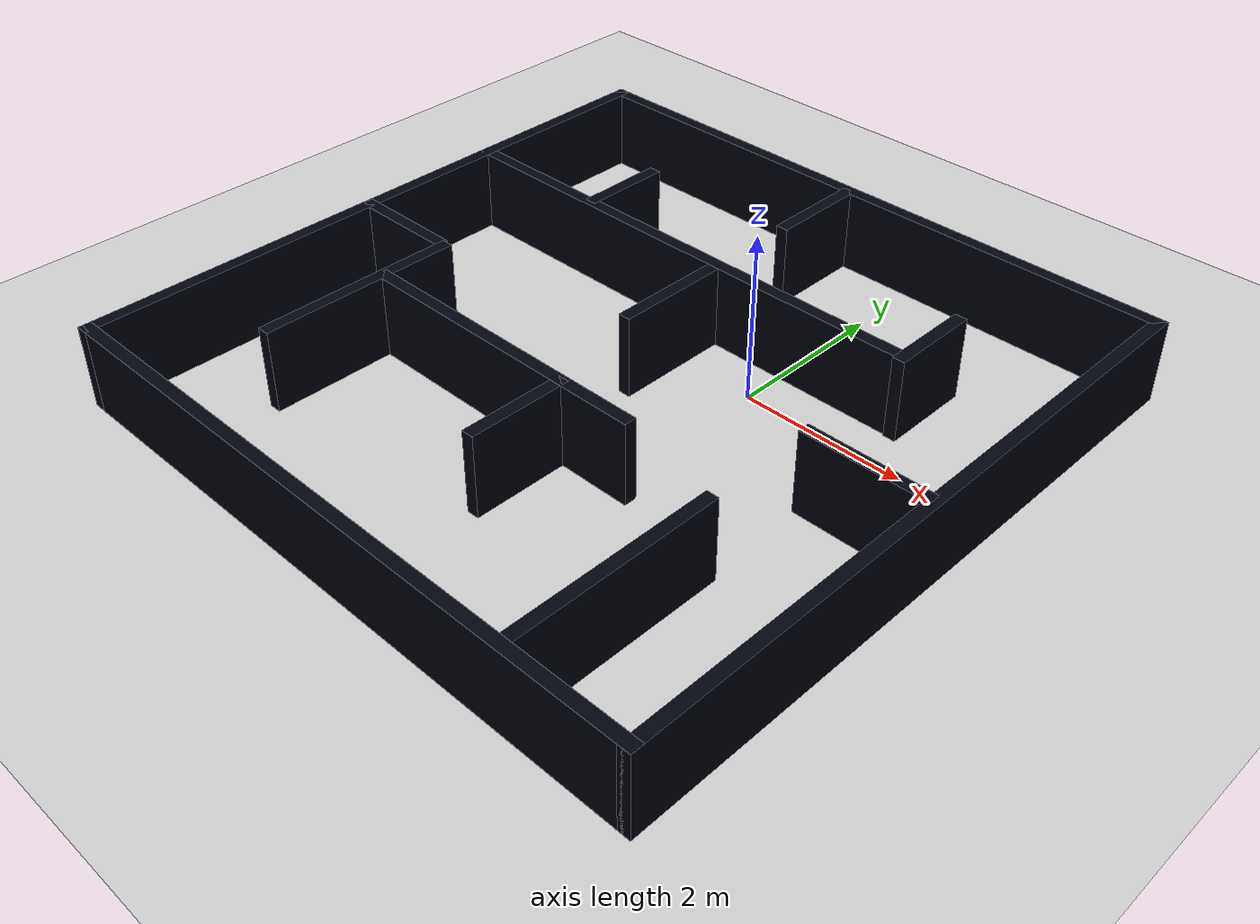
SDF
<?xml version='1.0'?>
<sdf version='1.6'>
  <world name='small'>
    <physics name='10ms' type='ignored'>
        <max_step_size>0.01</max_step_size>
        <real_time_factor>1</real_time_factor>
        <real_time_update_rate>100</real_time_update_rate>
    </physics>
    <plugin
      filename="ignition-gazebo-physics-system"
      name="gz::sim::systems::Physics">
    </plugin>
    <plugin
      filename="ignition-gazebo-user-commands-system"
      name="gz::sim::systems::UserCommands">
    </plugin>
    <plugin
      filename="ignition-gazebo-scene-broadcaster-system"
      name="gz::sim::systems::SceneBroadcaster">
    </plugin>
    <plugin
      filename="ignition-gazebo-contact-system"
      name="gz::sim::systems::Contact">
    </plugin>
    <light name='sun' type='directional'>
        <cast_shadows>1</cast_shadows>
        <pose>0 0 10 0 -0 0</pose>
        <diffuse>0.8 0.8 0.8 1</diffuse>
        <specular>0.2 0.2 0.2 1</specular>
        <attenuation>
            <range>1000</range>
            <constant>0.90000000000000002</constant>
            <linear>0.01</linear>
            <quadratic>0.001</quadratic>
        </attenuation>
        <direction>-0.5 0.1 -0.9</direction>
        <spot>
            <inner_angle>0</inner_angle>
            <outer_angle>0</outer_angle>
            <falloff>0</falloff>
        </spot>
    </light>
    <gravity>0 0 -9.8</gravity>
    <magnetic_field>6e-06 2.3e-05 -4.2e-05</magnetic_field>
    <atmosphere type='adiabatic' />
    <scene>
        <ambient>0.4 0.4 0.4 1</ambient>
        <background>0.7 0.7 0.7 1</background>
        <shadows>1</shadows>
    </scene>
    <model name='ground_plane'>
        <static>1</static>
        <link name='link'>
            <collision name='collision'>
                <geometry>
                    <plane>
                        <normal>0 0 1</normal>
                        <size>100 100</size>
                    </plane>
                </geometry>
                <surface>
                    <friction>
                        <ode />
                    </friction>
                    <bounce />
                    <contact />
                </surface>
            </collision>
            <visual name='visual'>
                <geometry>
                    <plane>
                        <normal>0 0 1</normal>
                        <size>100 100</size>
                    </plane>
                </geometry>
                <material>
                    <ambient>0.8 0.8 0.8 1</ambient>
                    <diffuse>0.8 0.8 0.8 1</diffuse>
                    <specular>0.8 0.8 0.8 1</specular>
                </material>
                <plugin name='__default__' filename='__default__' />
            </visual>
        </link>
        <plugin name='__default__' filename='__default__' />
        <pose>0 0 0 0 -0 0</pose>
    </model>

    <model name='Wall_15'>
      <link name='wall'>
        <pose>-4.19324 -1.26317 0.5 0 -0 0</pose>
        <static>true</static>
        <collision name='collision'>
          <geometry>
            <box>
              <size>1.36045 0.15 1</size>
            </box>
          </geometry>
        </collision>
        <visual name='visual'>
          <geometry>
            <box>
              <size>1.36045 0.15 1</size>
            </box>
          </geometry>
          <material>
            <ambient>0.1 0.1 0.1 1</ambient>
            <diffuse>0 0.01 0.05 1</diffuse>
            <specular>0 0.01 0.05 1</specular>
          </material>
        </visual>
      </link>
    </model>
    <model name='Wall_17'>
      <link name='wall17'>
        <pose>1.56897 -3.62224 0.5 0 0 -1.5708</pose>
        <static>true</static>
        <collision name='collision'>
          <geometry>
            <box>
              <size>2.5 0.15 1</size>
            </box>
          </geometry>
        </collision>
        <visual name='visual'>
          <geometry>
            <box>
              <size>2.5 0.15 1</size>
            </box>
          </geometry>
          <material>
            <ambient>0.1 0.1 0.1 1</ambient>
            <diffuse>0 0.01 0.05 1</diffuse>
            <specular>0 0.01 0.05 1</specular>
          </material>
        </visual>
      </link>
    </model>
    <model name='Wall_19'>
      <link name='wall'>
        <pose>2.27726 -1.04863 0.5 0 -0 3.14159</pose>
        <static>true</static>
        <collision name='collision'>
          <geometry>
            <box>
              <size>1.5 0.15 1</size>
            </box>
          </geometry>
        </collision>
        <visual name='visual'>
          <geometry>
            <box>
              <size>1.5 0.15 1</size>
            </box>
          </geometry>
          <material>
            <ambient>0.1 0.1 0.1 1</ambient>
            <diffuse>0 0.01 0.05 1</diffuse>
            <specular>0 0.01 0.05 1</specular>
          </material>
        </visual>
      </link>
    </model>
    <model name='Wall_22'>
      <link name='wall'>
        <pose>-4.81214 -1 0.5 0 0 -1.5708</pose>
        <static>true</static>
        <collision name='collision'>
          <geometry>
            <box>
              <size>8 0.15 1</size>
            </box>
          </geometry>
        </collision>
        <visual name='visual'>
          <geometry>
            <box>
              <size>8 0.15 1</size>
            </box>
          </geometry>
          <material>
            <ambient>0.1 0.1 0.1 1</ambient>
            <diffuse>0 0.01 0.05 1</diffuse>
            <specular>0 0.01 0.05 1</specular>
          </material>
        </visual>
      </link>
    </model>
    <model name='Wall_23'>
      <link name='wall'>
        <pose>-0.8887143 -4.925 0.5 0 -0 0</pose>
        <static>true</static>
        <collision name='collision'>
          <geometry>
            <box>
              <size>8 0.15 1</size>
            </box>
          </geometry>
        </collision>
        <visual name='visual'>
          <geometry>
            <box>
              <size>8 0.15 1</size>
            </box>
          </geometry>
          <material>
            <ambient>0.1 0.1 0.1 1</ambient>
            <diffuse>0 0.01 0.05 1</diffuse>
            <specular>0 0.01 0.05 1</specular>
          </material>
        </visual>
      </link>
    </model>
    <model name='Wall_24'>
      <link name='wall'>
        <pose>3.03786 -1 0.5 0 -0 1.5708</pose>
        <static>true</static>
        <collision name='collision'>
          <geometry>
            <box>
              <size>8 0.15 1</size>
            </box>
          </geometry>
        </collision>
        <visual name='visual'>
          <geometry>
            <box>
              <size>8 0.15 1</size>
            </box>
          </geometry>
          <material>
            <ambient>0.1 0.1 0.1 1</ambient>
            <diffuse>0 0.01 0.05 1</diffuse>
            <specular>0 0.01 0.05 1</specular>
          </material>
        </visual>
      </link>
    </model>
    <model name='Wall_25'>
      <link name='wall'>
        <pose>-0.8887143 2.925 0.5 0 -0 3.14159</pose>
        <static>true</static>
        <collision name='collision'>
          <geometry>
            <box>
              <size>8 0.15 1</size>
            </box>
          </geometry>
        </collision>
        <visual name='visual'>
          <geometry>
            <box>
              <size>8 0.15 1</size>
            </box>
          </geometry>
          <material>
            <ambient>0.1 0.1 0.1 1</ambient>
            <diffuse>0 0.01 0.05 1</diffuse>
            <specular>0 0.01 0.05 1</specular>
          </material>
        </visual>
      </link>
    </model>
    <model name='Wall_32'>
      <link name='wall'>
        <pose>-3.47225 -2.45584 0.5 0 0 -1.5708</pose>
        <static>true</static>
        <collision name='collision'>
          <geometry>
            <box>
              <size>2.47918 0.15 1</size>
            </box>
          </geometry>
        </collision>
        <visual name='visual'>
          <geometry>
            <box>
              <size>2.47918 0.15 1</size>
            </box>
          </geometry>
          <material>
            <ambient>0.1 0.1 0.1 1</ambient>
            <diffuse>0 0.01 0.05 1</diffuse>
            <specular>0 0.01 0.05 1</specular>
          </material>
        </visual>
      </link>
    </model>
    <model name='Wall_34'>
      <link name='wall'>
        <pose>-1 -0.144436 0.5 0 0 -1.5708</pose>
        <static>true</static>
        <collision name='collision'>
          <geometry>
            <box>
              <size>1.5 0.15 1</size>
            </box>
          </geometry>
        </collision>
        <visual name='visual'>
          <geometry>
            <box>
              <size>1.5 0.15 1</size>
            </box>
          </geometry>
          <material>
            <ambient>0.1 0.1 0.1 1</ambient>
            <diffuse>0 0.01 0.05 1</diffuse>
            <specular>0 0.01 0.05 1</specular>
          </material>
        </visual>
      </link>
    </model>
    <model name='Wall_40'>
      <link name='wall'>
        <pose>-3 1.123895 0.5 0 0 -1.5708</pose>
        <static>true</static>
        <collision name='collision'>
          <geometry>
            <box>
              <size>1.1 0.15 1</size>
            </box>
          </geometry>
        </collision>
        <visual name='visual'>
          <geometry>
            <box>
              <size>1.1 0.15 1</size>
            </box>
          </geometry>
          <material>
            <ambient>0.1 0.1 0.1 1</ambient>
            <diffuse>0 0.01 0.05 1</diffuse>
            <specular>0 0.01 0.05 1</specular>
          </material>
        </visual>
      </link>
    </model>
    <model name='Wall_41'>
      <link name='wall'>
        <pose>1.51058 1.02795 0.5 0 0 -1.5708</pose>
        <static>true</static>
        <collision name='collision'>
          <geometry>
            <box>
              <size>1.1 0.15 1</size>
            </box>
          </geometry>
        </collision>
        <visual name='visual'>
          <geometry>
            <box>
              <size>1.1 0.15 1</size>
            </box>
          </geometry>
          <material>
            <ambient>0.1 0.1 0.1 1</ambient>
            <diffuse>0 0.01 0.05 1</diffuse>
            <specular>0 0.01 0.05 1</specular>
          </material>
        </visual>
      </link>
    </model>
    <model name='Wall_42'>
      <link name='wall'>
        <pose>-1 2.3 0.5 0 0 -1.5708</pose>
        <static>true</static>
        <collision name='collision'>
          <geometry>
            <box>
              <size>1.25 0.15 1</size>
            </box>
          </geometry>
        </collision>
        <visual name='visual'>
          <geometry>
            <box>
              <size>1.25 0.15 1</size>
            </box>
          </geometry>
          <material>
            <ambient>0.1 0.1 0.1 1</ambient>
            <diffuse>0 0.01 0.05 1</diffuse>
            <specular>0 0.01 0.05 1</specular>
          </material>
        </visual>
      </link>
    </model>
    <model name='Wall_5'>
      <link name='wall'>
        <pose>-1.7 0.575 0.5 0 -0 0</pose>
        <static>true</static>
        <collision name='collision'>
          <geometry>
            <box>
              <size>6.3 0.15 1</size>
            </box>
          </geometry>
        </collision>
        <visual name='visual'>
          <geometry>
            <box>
              <size>6.3 0.15 1</size>
            </box>
          </geometry>
          <material>
            <ambient>0.1 0.1 0.1 1</ambient>
            <diffuse>0 0.01 0.05 1</diffuse>
            <specular>0 0.01 0.05 1</specular>
          </material>
        </visual>
      </link>
    </model>
    <model name='Wall_50'>
      <link name='wall'>
        <pose>-0.66 -2.71961 0.5 0 0 -1.5708</pose>
        <static>true</static>
        <collision name='collision'>
          <geometry>
            <box>
              <size>1.25 0.15 1</size>
            </box>
          </geometry>
        </collision>
        <visual name='visual'>
          <geometry>
            <box>
              <size>1.25 0.15 1</size>
            </box>
          </geometry>
          <material>
            <ambient>0.1 0.1 0.1 1</ambient>
            <diffuse>0 0.01 0.05 1</diffuse>
            <specular>0 0.01 0.05 1</specular>
          </material>
        </visual>
      </link>
    </model>
    <model name='Wall_7'>
      <link name='wall'>
        <pose>-1.606395 -2.1294 0.5 0 -0 0</pose>
        <static>true</static>
        <collision name='collision'>
          <geometry>
            <box>
              <size>3.81839 0.15 1</size>
            </box>
          </geometry>
        </collision>
        <visual name='visual'>
          <geometry>
            <box>
              <size>3.81839 0.15 1</size>
            </box>
          </geometry>
          <material>
            <ambient>0.1 0.1 0.1 1</ambient>
            <diffuse>0 0.01 0.05 1</diffuse>
            <specular>0 0.01 0.05 1</specular>
          </material>
        </visual>
      </link>
    </model>
  </world>
</sdf>
